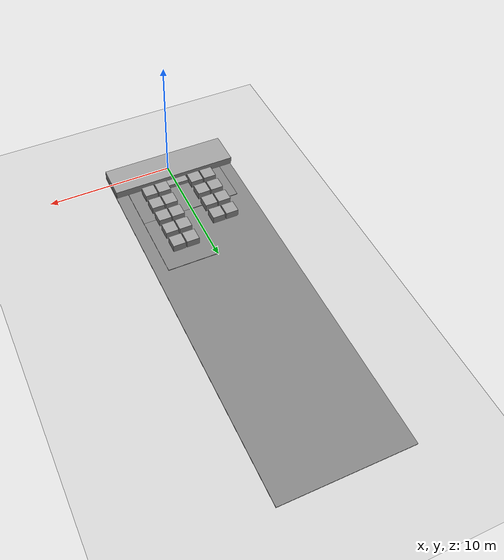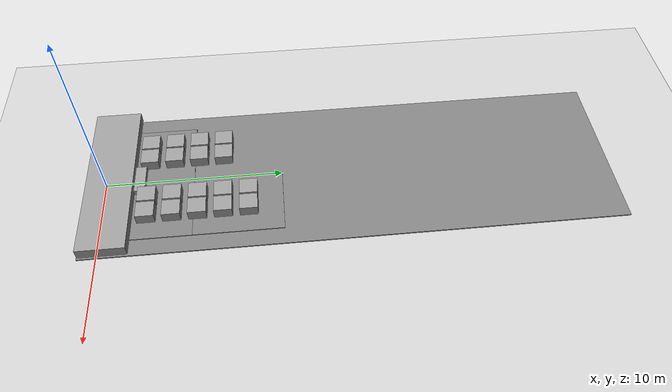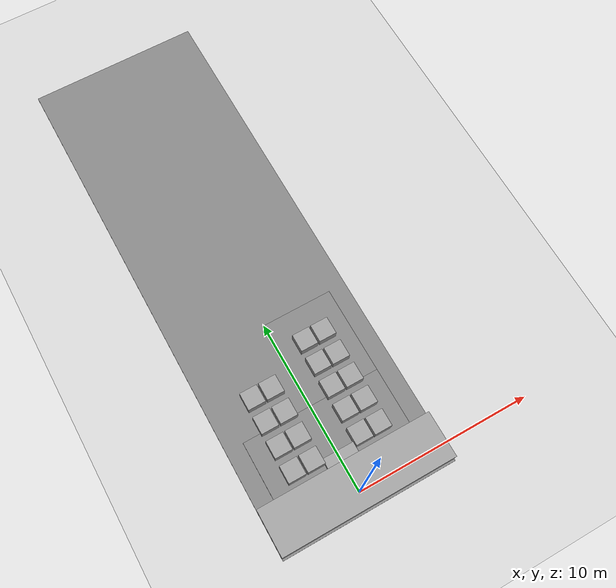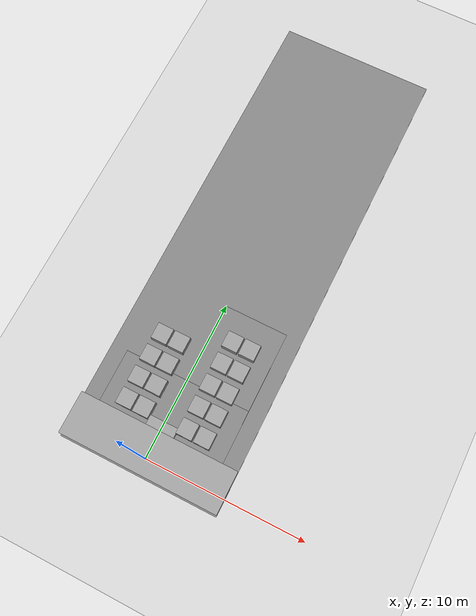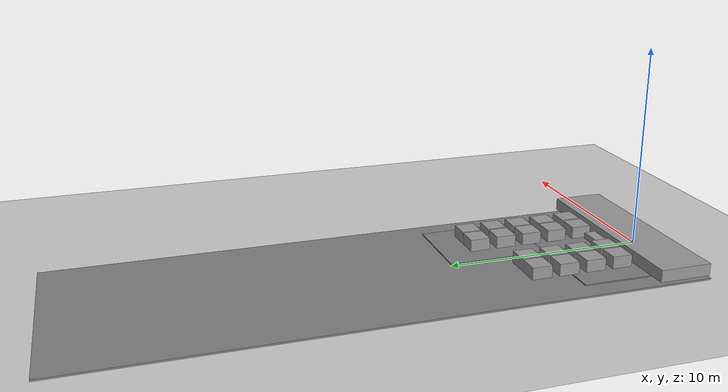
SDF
<sdf version="1.6">
 <world name="default">
  <model name="ground_plane">
   <static>1</static>
   <link name="link">
    <collision name="collision">
     <geometry><plane><normal>0 0 1</normal><size>100 100</size></plane></geometry>
     <surface>
      <contact><collide_bitmask>65535</collide_bitmask></contact>
      <friction><ode><mu>100</mu><mu2>50</mu2></ode></friction>
     </surface>
    </collision>
    <visual name="visual">
     <cast_shadows>0</cast_shadows>
     <geometry><plane><normal>0 0 1</normal><size>100 100</size></plane></geometry>
     <material>
      <script><uri>file://media/materials/scripts/gazebo.material</uri><name>Gazebo/Grey</name></script>
     </material>
    </visual>
   </link>
  </model>
  <model name="Estufa-objetos">
   <link name="link">
    <inertial>
     <mass>1</mass>
     <pose>0 0.13 0 0 -0 0</pose>
     <inertia><ixx>1</ixx><ixy>0</ixy><ixz>0</ixz><iyy>1</iyy><iyz>0</iyz><izz>1</izz></inertia>
    </inertial>
    <visual name="visual_1">
     <pose>0 9 0 0 -0 0</pose>
     <cast_shadows>0</cast_shadows>
     <geometry><box><size>10 30 0.1</size></box></geometry>
     <material>
      <script>
       <uri>model://mud_box/materials/scripts</uri>
       <uri>model://mud_box/materials/textures</uri>
       <name>vrc/mud</name>
      </script>
      <shader type="vertex"><normal_map>__default__</normal_map></shader>
      <ambient>0.5 0.5 0.5 1</ambient>
      <diffuse>0.5 0.5 0.5 1</diffuse>
      <specular>0.2 0.2 0.2 1</specular>
      <emissive>0 0 0 1</emissive>
     </material>
    </visual>
    <visual name="visual_2">
     <pose>2 2.5 0 0 -0 0</pose>
     <cast_shadows>0</cast_shadows>
     <geometry><box><size>4 5 0.2</size></box></geometry>
     <material>
      <script>
       <uri>model://mud_box/materials/scripts</uri>
       <uri>model://mud_box/materials/textures</uri>
       <name>vrc/mud</name>
      </script>
      <shader type="vertex"><normal_map>__default__</normal_map></shader>
      <ambient>0.5 0.5 0.5 1</ambient>
      <diffuse>0.5 0.5 0.5 1</diffuse>
      <specular>0.2 0.2 0.2 1</specular>
      <emissive>0 0 0 1</emissive>
     </material>
    </visual>
    <visual name="visual_3">
     <pose>2 -2.5 0 0 -0 0</pose>
     <cast_shadows>0</cast_shadows>
     <geometry><box><size>4 5 0.2</size></box></geometry>
     <material>
      <script>
       <uri>model://mud_box/materials/scripts</uri>
       <uri>model://mud_box/materials/textures</uri>
       <name>vrc/mud</name>
      </script>
      <shader type="vertex"><normal_map>__default__</normal_map></shader>
      <ambient>0.5 0.5 0.5 1</ambient>
      <diffuse>0.5 0.5 0.5 1</diffuse>
      <specular>0.2 0.2 0.2 1</specular>
      <emissive>0 0 0 1</emissive>
     </material>
    </visual>
    <visual name="visual_4">
     <pose>-2 -2.5 0 0 -0 0</pose>
     <cast_shadows>0</cast_shadows>
     <geometry><box><size>4 5 0.2</size></box></geometry>
     <material>
      <script>
       <uri>model://mud_box/materials/scripts</uri>
       <uri>model://mud_box/materials/textures</uri>
       <name>vrc/mud</name>
      </script>
      <shader type="vertex"><normal_map>__default__</normal_map></shader>
      <ambient>0.5 0.5 0.5 1</ambient>
      <diffuse>0.5 0.5 0.5 1</diffuse>
      <specular>0.2 0.2 0.2 1</specular>
      <emissive>0 0 0 1</emissive>
     </material>
    </visual>
    <collision name="collision">
     <pose>0 9 0 0 -0 0</pose>
     <geometry><box><size>10 30 0.1</size></box></geometry>
     <surface>
      <friction>
       <ode><mu>1</mu><mu2>1</mu2><fdir1>0 0 0</fdir1><slip1>0</slip1><slip2>0</slip2></ode>
       <torsional>
        <coefficient>1</coefficient>
        <patch_radius>0</patch_radius>
        <surface_radius>0</surface_radius>
        <use_patch_radius>1</use_patch_radius>
        <ode><slip>0</slip></ode>
       </torsional>
      </friction>
      <bounce><restitution_coefficient>0</restitution_coefficient><threshold>1e+06</threshold></bounce>
      <contact>
       <collide_without_contact>0</collide_without_contact>
       <collide_without_contact_bitmask>1</collide_without_contact_bitmask>
       <collide_bitmask>1</collide_bitmask>
       <ode>
        <soft_cfm>0</soft_cfm>
        <soft_erp>0.2</soft_erp>
        <kp>1e+13</kp>
        <kd>1</kd>
        <max_vel>0.01</max_vel>
        <min_depth>0</min_depth>
       </ode>
       <bullet>
        <split_impulse>1</split_impulse>
        <split_impulse_penetration_threshold>-0.01</split_impulse_penetration_threshold>
        <soft_cfm>0</soft_cfm>
        <soft_erp>0.2</soft_erp>
        <kp>1e+13</kp>
        <kd>1</kd>
       </bullet>
      </contact>
     </surface>
    </collision>
   </link>
   <link name="link_0_clone">
    <inertial>
     <mass>1</mass>
     <inertia>
      <ixx>0.166667</ixx>
      <ixy>0</ixy>
      <ixz>0</ixz>
      <iyy>0.166667</iyy>
      <iyz>0</iyz>
      <izz>0.166667</izz>
     </inertia>
    </inertial>
    <pose>2.5 -2.5 0.5 0 -0 0</pose>
    <visual name="visual">
     <geometry><box><size>1 1 0.6</size></box></geometry>
     <material>
      <lighting>1</lighting>
      <script><uri>file://media/materials/scripts/gazebo.material</uri><name>Gazebo/Grey</name></script>
      <shader type="vertex"><normal_map>__default__</normal_map></shader>
      <ambient>0.3 0.3 0.3 1</ambient>
      <diffuse>0.7 0.7 0.7 1</diffuse>
      <specular>0.01 0.01 0.01 1</specular>
      <emissive>0 0 0 1</emissive>
     </material>
    </visual>
    <collision name="collision">
     <geometry><box><size>1 1 0.6</size></box></geometry>
     <surface>
      <friction>
       <ode><mu>1</mu><mu2>1</mu2><fdir1>0 0 0</fdir1><slip1>0</slip1><slip2>0</slip2></ode>
       <torsional>
        <coefficient>1</coefficient>
        <patch_radius>0</patch_radius>
        <surface_radius>0</surface_radius>
        <use_patch_radius>1</use_patch_radius>
        <ode><slip>0</slip></ode>
       </torsional>
      </friction>
      <bounce><restitution_coefficient>0</restitution_coefficient><threshold>1e+06</threshold></bounce>
      <contact>
       <collide_without_contact>0</collide_without_contact>
       <collide_without_contact_bitmask>1</collide_without_contact_bitmask>
       <collide_bitmask>1</collide_bitmask>
       <ode>
        <soft_cfm>0</soft_cfm>
        <soft_erp>0.2</soft_erp>
        <kp>1e+13</kp>
        <kd>1</kd>
        <max_vel>0.01</max_vel>
        <min_depth>0</min_depth>
       </ode>
       <bullet>
        <split_impulse>1</split_impulse>
        <split_impulse_penetration_threshold>-0.01</split_impulse_penetration_threshold>
        <soft_cfm>0</soft_cfm>
        <soft_erp>0.2</soft_erp>
        <kp>1e+13</kp>
        <kd>1</kd>
       </bullet>
      </contact>
     </surface>
    </collision>
   </link>
   <link name="link_0_clone_0">
    <inertial>
     <mass>1</mass>
     <inertia>
      <ixx>0.166667</ixx>
      <ixy>0</ixy>
      <ixz>0</ixz>
      <iyy>0.166667</iyy>
      <iyz>0</iyz>
      <izz>0.166667</izz>
     </inertia>
    </inertial>
    <pose>-1.4 -2.5 0.5 0 -0 0</pose>
    <visual name="visual">
     <geometry><box><size>1 1 0.6</size></box></geometry>
     <material>
      <lighting>1</lighting>
      <script><uri>file://media/materials/scripts/gazebo.material</uri><name>Gazebo/Grey</name></script>
      <shader type="vertex"><normal_map>__default__</normal_map></shader>
      <ambient>0.3 0.3 0.3 1</ambient>
      <diffuse>0.7 0.7 0.7 1</diffuse>
      <specular>0.01 0.01 0.01 1</specular>
      <emissive>0 0 0 1</emissive>
     </material>
    </visual>
    <collision name="collision">
     <geometry><box><size>1 1 0.6</size></box></geometry>
     <surface>
      <friction>
       <ode><mu>1</mu><mu2>1</mu2><fdir1>0 0 0</fdir1><slip1>0</slip1><slip2>0</slip2></ode>
       <torsional>
        <coefficient>1</coefficient>
        <patch_radius>0</patch_radius>
        <surface_radius>0</surface_radius>
        <use_patch_radius>1</use_patch_radius>
        <ode><slip>0</slip></ode>
       </torsional>
      </friction>
      <bounce><restitution_coefficient>0</restitution_coefficient><threshold>1e+06</threshold></bounce>
      <contact>
       <collide_without_contact>0</collide_without_contact>
       <collide_without_contact_bitmask>1</collide_without_contact_bitmask>
       <collide_bitmask>1</collide_bitmask>
       <ode>
        <soft_cfm>0</soft_cfm>
        <soft_erp>0.2</soft_erp>
        <kp>1e+13</kp>
        <kd>1</kd>
        <max_vel>0.01</max_vel>
        <min_depth>0</min_depth>
       </ode>
       <bullet>
        <split_impulse>1</split_impulse>
        <split_impulse_penetration_threshold>-0.01</split_impulse_penetration_threshold>
        <soft_cfm>0</soft_cfm>
        <soft_erp>0.2</soft_erp>
        <kp>1e+13</kp>
        <kd>1</kd>
       </bullet>
      </contact>
     </surface>
    </collision>
   </link>
   <link name="link_0_clone_0_clone">
    <inertial>
     <mass>1</mass>
     <inertia>
      <ixx>0.166667</ixx>
      <ixy>0</ixy>
      <ixz>0</ixz>
      <iyy>0.166667</iyy>
      <iyz>0</iyz>
      <izz>0.166667</izz>
     </inertia>
    </inertial>
    <pose>0 -3 0.3 0 -0 0</pose>
    <visual name="visual">
     <geometry><box><size>1.8 0.6 0.3</size></box></geometry>
     <material>
      <lighting>1</lighting>
      <script><uri>file://media/materials/scripts/gazebo.material</uri><name>Gazebo/Grey</name></script>
      <shader type="vertex"><normal_map>__default__</normal_map></shader>
      <ambient>0.3 0.3 0.3 1</ambient>
      <diffuse>0.7 0.7 0.7 1</diffuse>
      <specular>0.01 0.01 0.01 1</specular>
      <emissive>0 0 0 1</emissive>
     </material>
    </visual>
    <collision name="collision">
     <geometry><box><size>1.8 0.6 0.3</size></box></geometry>
     <surface>
      <friction>
       <ode><mu>1</mu><mu2>1</mu2><fdir1>0 0 0</fdir1><slip1>0</slip1><slip2>0</slip2></ode>
       <torsional>
        <coefficient>1</coefficient>
        <patch_radius>0</patch_radius>
        <surface_radius>0</surface_radius>
        <use_patch_radius>1</use_patch_radius>
        <ode><slip>0</slip></ode>
       </torsional>
      </friction>
      <bounce><restitution_coefficient>0</restitution_coefficient><threshold>1e+06</threshold></bounce>
      <contact>
       <collide_without_contact>0</collide_without_contact>
       <collide_without_contact_bitmask>1</collide_without_contact_bitmask>
       <collide_bitmask>1</collide_bitmask>
       <ode>
        <soft_cfm>0</soft_cfm>
        <soft_erp>0.2</soft_erp>
        <kp>1e+13</kp>
        <kd>1</kd>
        <max_vel>0.01</max_vel>
        <min_depth>0</min_depth>
       </ode>
       <bullet>
        <split_impulse>1</split_impulse>
        <split_impulse_penetration_threshold>-0.01</split_impulse_penetration_threshold>
        <soft_cfm>0</soft_cfm>
        <soft_erp>0.2</soft_erp>
        <kp>1e+13</kp>
        <kd>1</kd>
       </bullet>
      </contact>
     </surface>
    </collision>
   </link>
   <link name="link_0_clone_1">
    <inertial>
     <mass>1</mass>
     <inertia>
      <ixx>0.166667</ixx>
      <ixy>0</ixy>
      <ixz>0</ixz>
      <iyy>0.166667</iyy>
      <iyz>0</iyz>
      <izz>0.166667</izz>
     </inertia>
    </inertial>
    <pose>-2.5 -2.5 0.5 0 -0 0</pose>
    <visual name="visual">
     <geometry><box><size>1 1 0.6</size></box></geometry>
     <material>
      <lighting>1</lighting>
      <script><uri>file://media/materials/scripts/gazebo.material</uri><name>Gazebo/Grey</name></script>
      <shader type="vertex"><normal_map>__default__</normal_map></shader>
      <ambient>0.3 0.3 0.3 1</ambient>
      <diffuse>0.7 0.7 0.7 1</diffuse>
      <specular>0.01 0.01 0.01 1</specular>
      <emissive>0 0 0 1</emissive>
     </material>
    </visual>
    <collision name="collision">
     <geometry><box><size>1 1 0.6</size></box></geometry>
     <surface>
      <friction>
       <ode><mu>1</mu><mu2>1</mu2><fdir1>0 0 0</fdir1><slip1>0</slip1><slip2>0</slip2></ode>
       <torsional>
        <coefficient>1</coefficient>
        <patch_radius>0</patch_radius>
        <surface_radius>0</surface_radius>
        <use_patch_radius>1</use_patch_radius>
        <ode><slip>0</slip></ode>
       </torsional>
      </friction>
      <bounce><restitution_coefficient>0</restitution_coefficient><threshold>1e+06</threshold></bounce>
      <contact>
       <collide_without_contact>0</collide_without_contact>
       <collide_without_contact_bitmask>1</collide_without_contact_bitmask>
       <collide_bitmask>1</collide_bitmask>
       <ode>
        <soft_cfm>0</soft_cfm>
        <soft_erp>0.2</soft_erp>
        <kp>1e+13</kp>
        <kd>1</kd>
        <max_vel>0.01</max_vel>
        <min_depth>0</min_depth>
       </ode>
       <bullet>
        <split_impulse>1</split_impulse>
        <split_impulse_penetration_threshold>-0.01</split_impulse_penetration_threshold>
        <soft_cfm>0</soft_cfm>
        <soft_erp>0.2</soft_erp>
        <kp>1e+13</kp>
        <kd>1</kd>
       </bullet>
      </contact>
     </surface>
    </collision>
   </link>
   <link name="link_0_clone_clone">
    <inertial>
     <mass>1</mass>
     <inertia>
      <ixx>0.166667</ixx>
      <ixy>0</ixy>
      <ixz>0</ixz>
      <iyy>0.166667</iyy>
      <iyz>0</iyz>
      <izz>0.166667</izz>
     </inertia>
    </inertial>
    <pose>2.5 -1.1 0.5 0 -0 0</pose>
    <visual name="visual">
     <geometry><box><size>1 1 0.6</size></box></geometry>
     <material>
      <lighting>1</lighting>
      <script><uri>file://media/materials/scripts/gazebo.material</uri><name>Gazebo/Grey</name></script>
      <shader type="vertex"><normal_map>__default__</normal_map></shader>
      <ambient>0.3 0.3 0.3 1</ambient>
      <diffuse>0.7 0.7 0.7 1</diffuse>
      <specular>0.01 0.01 0.01 1</specular>
      <emissive>0 0 0 1</emissive>
     </material>
    </visual>
    <collision name="collision">
     <geometry><box><size>1 1 0.6</size></box></geometry>
     <surface>
      <friction>
       <ode><mu>1</mu><mu2>1</mu2><fdir1>0 0 0</fdir1><slip1>0</slip1><slip2>0</slip2></ode>
       <torsional>
        <coefficient>1</coefficient>
        <patch_radius>0</patch_radius>
        <surface_radius>0</surface_radius>
        <use_patch_radius>1</use_patch_radius>
        <ode><slip>0</slip></ode>
       </torsional>
      </friction>
      <bounce><restitution_coefficient>0</restitution_coefficient><threshold>1e+06</threshold></bounce>
      <contact>
       <collide_without_contact>0</collide_without_contact>
       <collide_without_contact_bitmask>1</collide_without_contact_bitmask>
       <collide_bitmask>1</collide_bitmask>
       <ode>
        <soft_cfm>0</soft_cfm>
        <soft_erp>0.2</soft_erp>
        <kp>1e+13</kp>
        <kd>1</kd>
        <max_vel>0.01</max_vel>
        <min_depth>0</min_depth>
       </ode>
       <bullet>
        <split_impulse>1</split_impulse>
        <split_impulse_penetration_threshold>-0.01</split_impulse_penetration_threshold>
        <soft_cfm>0</soft_cfm>
        <soft_erp>0.2</soft_erp>
        <kp>1e+13</kp>
        <kd>1</kd>
       </bullet>
      </contact>
     </surface>
    </collision>
   </link>
   <link name="link_0_clone_clone_0">
    <inertial>
     <mass>1</mass>
     <inertia>
      <ixx>0.166667</ixx>
      <ixy>0</ixy>
      <ixz>0</ixz>
      <iyy>0.166667</iyy>
      <iyz>0</iyz>
      <izz>0.166667</izz>
     </inertia>
    </inertial>
    <pose>1.4 -1.1 0.5 0 -0 0</pose>
    <visual name="visual">
     <geometry><box><size>1 1 0.6</size></box></geometry>
     <material>
      <lighting>1</lighting>
      <script><uri>file://media/materials/scripts/gazebo.material</uri><name>Gazebo/Grey</name></script>
      <shader type="vertex"><normal_map>__default__</normal_map></shader>
      <ambient>0.3 0.3 0.3 1</ambient>
      <diffuse>0.7 0.7 0.7 1</diffuse>
      <specular>0.01 0.01 0.01 1</specular>
      <emissive>0 0 0 1</emissive>
     </material>
    </visual>
    <collision name="collision">
     <geometry><box><size>1 1 0.6</size></box></geometry>
     <surface>
      <friction>
       <ode><mu>1</mu><mu2>1</mu2><fdir1>0 0 0</fdir1><slip1>0</slip1><slip2>0</slip2></ode>
       <torsional>
        <coefficient>1</coefficient>
        <patch_radius>0</patch_radius>
        <surface_radius>0</surface_radius>
        <use_patch_radius>1</use_patch_radius>
        <ode><slip>0</slip></ode>
       </torsional>
      </friction>
      <bounce><restitution_coefficient>0</restitution_coefficient><threshold>1e+06</threshold></bounce>
      <contact>
       <collide_without_contact>0</collide_without_contact>
       <collide_without_contact_bitmask>1</collide_without_contact_bitmask>
       <collide_bitmask>1</collide_bitmask>
       <ode>
        <soft_cfm>0</soft_cfm>
        <soft_erp>0.2</soft_erp>
        <kp>1e+13</kp>
        <kd>1</kd>
        <max_vel>0.01</max_vel>
        <min_depth>0</min_depth>
       </ode>
       <bullet>
        <split_impulse>1</split_impulse>
        <split_impulse_penetration_threshold>-0.01</split_impulse_penetration_threshold>
        <soft_cfm>0</soft_cfm>
        <soft_erp>0.2</soft_erp>
        <kp>1e+13</kp>
        <kd>1</kd>
       </bullet>
      </contact>
     </surface>
    </collision>
   </link>
   <link name="link_0_clone_clone_1">
    <inertial>
     <mass>1</mass>
     <inertia>
      <ixx>0.166667</ixx>
      <ixy>0</ixy>
      <ixz>0</ixz>
      <iyy>0.166667</iyy>
      <iyz>0</iyz>
      <izz>0.166667</izz>
     </inertia>
    </inertial>
    <pose>-1.4 -1.1 0.5 0 -0 0</pose>
    <visual name="visual">
     <geometry><box><size>1 1 0.6</size></box></geometry>
     <material>
      <lighting>1</lighting>
      <script><uri>file://media/materials/scripts/gazebo.material</uri><name>Gazebo/Grey</name></script>
      <shader type="vertex"><normal_map>__default__</normal_map></shader>
      <ambient>0.3 0.3 0.3 1</ambient>
      <diffuse>0.7 0.7 0.7 1</diffuse>
      <specular>0.01 0.01 0.01 1</specular>
      <emissive>0 0 0 1</emissive>
     </material>
    </visual>
    <collision name="collision">
     <geometry><box><size>1 1 0.6</size></box></geometry>
     <surface>
      <friction>
       <ode><mu>1</mu><mu2>1</mu2><fdir1>0 0 0</fdir1><slip1>0</slip1><slip2>0</slip2></ode>
       <torsional>
        <coefficient>1</coefficient>
        <patch_radius>0</patch_radius>
        <surface_radius>0</surface_radius>
        <use_patch_radius>1</use_patch_radius>
        <ode><slip>0</slip></ode>
       </torsional>
      </friction>
      <bounce><restitution_coefficient>0</restitution_coefficient><threshold>1e+06</threshold></bounce>
      <contact>
       <collide_without_contact>0</collide_without_contact>
       <collide_without_contact_bitmask>1</collide_without_contact_bitmask>
       <collide_bitmask>1</collide_bitmask>
       <ode>
        <soft_cfm>0</soft_cfm>
        <soft_erp>0.2</soft_erp>
        <kp>1e+13</kp>
        <kd>1</kd>
        <max_vel>0.01</max_vel>
        <min_depth>0</min_depth>
       </ode>
       <bullet>
        <split_impulse>1</split_impulse>
        <split_impulse_penetration_threshold>-0.01</split_impulse_penetration_threshold>
        <soft_cfm>0</soft_cfm>
        <soft_erp>0.2</soft_erp>
        <kp>1e+13</kp>
        <kd>1</kd>
       </bullet>
      </contact>
     </surface>
    </collision>
   </link>
   <link name="link_0_clone_clone_10">
    <inertial>
     <mass>1</mass>
     <inertia>
      <ixx>0.166667</ixx>
      <ixy>0</ixy>
      <ixz>0</ixz>
      <iyy>0.166667</iyy>
      <iyz>0</iyz>
      <izz>0.166667</izz>
     </inertia>
    </inertial>
    <pose>-1.4 1.7 0.5 0 -0 0</pose>
    <visual name="visual">
     <geometry><box><size>1 1 0.6</size></box></geometry>
     <material>
      <lighting>1</lighting>
      <script><uri>file://media/materials/scripts/gazebo.material</uri><name>Gazebo/Grey</name></script>
      <shader type="vertex"><normal_map>__default__</normal_map></shader>
      <ambient>0.3 0.3 0.3 1</ambient>
      <diffuse>0.7 0.7 0.7 1</diffuse>
      <specular>0.01 0.01 0.01 1</specular>
      <emissive>0 0 0 1</emissive>
     </material>
    </visual>
    <collision name="collision">
     <geometry><box><size>1 1 0.6</size></box></geometry>
     <surface>
      <friction>
       <ode><mu>1</mu><mu2>1</mu2><fdir1>0 0 0</fdir1><slip1>0</slip1><slip2>0</slip2></ode>
       <torsional>
        <coefficient>1</coefficient>
        <patch_radius>0</patch_radius>
        <surface_radius>0</surface_radius>
        <use_patch_radius>1</use_patch_radius>
        <ode><slip>0</slip></ode>
       </torsional>
      </friction>
      <bounce><restitution_coefficient>0</restitution_coefficient><threshold>1e+06</threshold></bounce>
      <contact>
       <collide_without_contact>0</collide_without_contact>
       <collide_without_contact_bitmask>1</collide_without_contact_bitmask>
       <collide_bitmask>1</collide_bitmask>
       <ode>
        <soft_cfm>0</soft_cfm>
        <soft_erp>0.2</soft_erp>
        <kp>1e+13</kp>
        <kd>1</kd>
        <max_vel>0.01</max_vel>
        <min_depth>0</min_depth>
       </ode>
       <bullet>
        <split_impulse>1</split_impulse>
        <split_impulse_penetration_threshold>-0.01</split_impulse_penetration_threshold>
        <soft_cfm>0</soft_cfm>
        <soft_erp>0.2</soft_erp>
        <kp>1e+13</kp>
        <kd>1</kd>
       </bullet>
      </contact>
     </surface>
    </collision>
   </link>
   <link name="link_0_clone_clone_11">
    <inertial>
     <mass>1</mass>
     <inertia>
      <ixx>0.166667</ixx>
      <ixy>0</ixy>
      <ixz>0</ixz>
      <iyy>0.166667</iyy>
      <iyz>0</iyz>
      <izz>0.166667</izz>
     </inertia>
    </inertial>
    <pose>-2.5 1.7 0.5 0 -0 0</pose>
    <visual name="visual">
     <geometry><box><size>1 1 0.6</size></box></geometry>
     <material>
      <lighting>1</lighting>
      <script><uri>file://media/materials/scripts/gazebo.material</uri><name>Gazebo/Grey</name></script>
      <shader type="vertex"><normal_map>__default__</normal_map></shader>
      <ambient>0.3 0.3 0.3 1</ambient>
      <diffuse>0.7 0.7 0.7 1</diffuse>
      <specular>0.01 0.01 0.01 1</specular>
      <emissive>0 0 0 1</emissive>
     </material>
    </visual>
    <collision name="collision">
     <geometry><box><size>1 1 0.6</size></box></geometry>
     <surface>
      <friction>
       <ode><mu>1</mu><mu2>1</mu2><fdir1>0 0 0</fdir1><slip1>0</slip1><slip2>0</slip2></ode>
       <torsional>
        <coefficient>1</coefficient>
        <patch_radius>0</patch_radius>
        <surface_radius>0</surface_radius>
        <use_patch_radius>1</use_patch_radius>
        <ode><slip>0</slip></ode>
       </torsional>
      </friction>
      <bounce><restitution_coefficient>0</restitution_coefficient><threshold>1e+06</threshold></bounce>
      <contact>
       <collide_without_contact>0</collide_without_contact>
       <collide_without_contact_bitmask>1</collide_without_contact_bitmask>
       <collide_bitmask>1</collide_bitmask>
       <ode>
        <soft_cfm>0</soft_cfm>
        <soft_erp>0.2</soft_erp>
        <kp>1e+13</kp>
        <kd>1</kd>
        <max_vel>0.01</max_vel>
        <min_depth>0</min_depth>
       </ode>
       <bullet>
        <split_impulse>1</split_impulse>
        <split_impulse_penetration_threshold>-0.01</split_impulse_penetration_threshold>
        <soft_cfm>0</soft_cfm>
        <soft_erp>0.2</soft_erp>
        <kp>1e+13</kp>
        <kd>1</kd>
       </bullet>
      </contact>
     </surface>
    </collision>
   </link>
   <link name="link_0_clone_clone_12">
    <inertial>
     <mass>1</mass>
     <inertia>
      <ixx>0.166667</ixx>
      <ixy>0</ixy>
      <ixz>0</ixz>
      <iyy>0.166667</iyy>
      <iyz>0</iyz>
      <izz>0.166667</izz>
     </inertia>
    </inertial>
    <pose>2.5 3.1 0.5 0 -0 0</pose>
    <visual name="visual">
     <geometry><box><size>1 1 0.6</size></box></geometry>
     <material>
      <lighting>1</lighting>
      <script><uri>file://media/materials/scripts/gazebo.material</uri><name>Gazebo/Grey</name></script>
      <shader type="vertex"><normal_map>__default__</normal_map></shader>
      <ambient>0.3 0.3 0.3 1</ambient>
      <diffuse>0.7 0.7 0.7 1</diffuse>
      <specular>0.01 0.01 0.01 1</specular>
      <emissive>0 0 0 1</emissive>
     </material>
    </visual>
    <collision name="collision">
     <geometry><box><size>1 1 0.6</size></box></geometry>
     <surface>
      <friction>
       <ode><mu>1</mu><mu2>1</mu2><fdir1>0 0 0</fdir1><slip1>0</slip1><slip2>0</slip2></ode>
       <torsional>
        <coefficient>1</coefficient>
        <patch_radius>0</patch_radius>
        <surface_radius>0</surface_radius>
        <use_patch_radius>1</use_patch_radius>
        <ode><slip>0</slip></ode>
       </torsional>
      </friction>
      <bounce><restitution_coefficient>0</restitution_coefficient><threshold>1e+06</threshold></bounce>
      <contact>
       <collide_without_contact>0</collide_without_contact>
       <collide_without_contact_bitmask>1</collide_without_contact_bitmask>
       <collide_bitmask>1</collide_bitmask>
       <ode>
        <soft_cfm>0</soft_cfm>
        <soft_erp>0.2</soft_erp>
        <kp>1e+13</kp>
        <kd>1</kd>
        <max_vel>0.01</max_vel>
        <min_depth>0</min_depth>
       </ode>
       <bullet>
        <split_impulse>1</split_impulse>
        <split_impulse_penetration_threshold>-0.01</split_impulse_penetration_threshold>
        <soft_cfm>0</soft_cfm>
        <soft_erp>0.2</soft_erp>
        <kp>1e+13</kp>
        <kd>1</kd>
       </bullet>
      </contact>
     </surface>
    </collision>
   </link>
   <link name="link_0_clone_clone_13">
    <inertial>
     <mass>1</mass>
     <inertia>
      <ixx>0.166667</ixx>
      <ixy>0</ixy>
      <ixz>0</ixz>
      <iyy>0.166667</iyy>
      <iyz>0</iyz>
      <izz>0.166667</izz>
     </inertia>
    </inertial>
    <pose>1.4 3.1 0.5 0 -0 0</pose>
    <visual name="visual">
     <geometry><box><size>1 1 0.6</size></box></geometry>
     <material>
      <lighting>1</lighting>
      <script><uri>file://media/materials/scripts/gazebo.material</uri><name>Gazebo/Grey</name></script>
      <shader type="vertex"><normal_map>__default__</normal_map></shader>
      <ambient>0.3 0.3 0.3 1</ambient>
      <diffuse>0.7 0.7 0.7 1</diffuse>
      <specular>0.01 0.01 0.01 1</specular>
      <emissive>0 0 0 1</emissive>
     </material>
    </visual>
    <collision name="collision">
     <geometry><box><size>1 1 0.6</size></box></geometry>
     <surface>
      <friction>
       <ode><mu>1</mu><mu2>1</mu2><fdir1>0 0 0</fdir1><slip1>0</slip1><slip2>0</slip2></ode>
       <torsional>
        <coefficient>1</coefficient>
        <patch_radius>0</patch_radius>
        <surface_radius>0</surface_radius>
        <use_patch_radius>1</use_patch_radius>
        <ode><slip>0</slip></ode>
       </torsional>
      </friction>
      <bounce><restitution_coefficient>0</restitution_coefficient><threshold>1e+06</threshold></bounce>
      <contact>
       <collide_without_contact>0</collide_without_contact>
       <collide_without_contact_bitmask>1</collide_without_contact_bitmask>
       <collide_bitmask>1</collide_bitmask>
       <ode>
        <soft_cfm>0</soft_cfm>
        <soft_erp>0.2</soft_erp>
        <kp>1e+13</kp>
        <kd>1</kd>
        <max_vel>0.01</max_vel>
        <min_depth>0</min_depth>
       </ode>
       <bullet>
        <split_impulse>1</split_impulse>
        <split_impulse_penetration_threshold>-0.01</split_impulse_penetration_threshold>
        <soft_cfm>0</soft_cfm>
        <soft_erp>0.2</soft_erp>
        <kp>1e+13</kp>
        <kd>1</kd>
       </bullet>
      </contact>
     </surface>
    </collision>
   </link>
   <link name="link_0_clone_clone_2">
    <inertial>
     <mass>1</mass>
     <inertia>
      <ixx>0.166667</ixx>
      <ixy>0</ixy>
      <ixz>0</ixz>
      <iyy>0.166667</iyy>
      <iyz>0</iyz>
      <izz>0.166667</izz>
     </inertia>
    </inertial>
    <pose>1.4 -2.5 0.5 0 -0 0</pose>
    <visual name="visual">
     <geometry><box><size>1 1 0.6</size></box></geometry>
     <material>
      <lighting>1</lighting>
      <script><uri>file://media/materials/scripts/gazebo.material</uri><name>Gazebo/Grey</name></script>
      <shader type="vertex"><normal_map>__default__</normal_map></shader>
      <ambient>0.3 0.3 0.3 1</ambient>
      <diffuse>0.7 0.7 0.7 1</diffuse>
      <specular>0.01 0.01 0.01 1</specular>
      <emissive>0 0 0 1</emissive>
     </material>
    </visual>
    <collision name="collision">
     <geometry><box><size>1 1 0.6</size></box></geometry>
     <surface>
      <friction>
       <ode><mu>1</mu><mu2>1</mu2><fdir1>0 0 0</fdir1><slip1>0</slip1><slip2>0</slip2></ode>
       <torsional>
        <coefficient>1</coefficient>
        <patch_radius>0</patch_radius>
        <surface_radius>0</surface_radius>
        <use_patch_radius>1</use_patch_radius>
        <ode><slip>0</slip></ode>
       </torsional>
      </friction>
      <bounce><restitution_coefficient>0</restitution_coefficient><threshold>1e+06</threshold></bounce>
      <contact>
       <collide_without_contact>0</collide_without_contact>
       <collide_without_contact_bitmask>1</collide_without_contact_bitmask>
       <collide_bitmask>1</collide_bitmask>
       <ode>
        <soft_cfm>0</soft_cfm>
        <soft_erp>0.2</soft_erp>
        <kp>1e+13</kp>
        <kd>1</kd>
        <max_vel>0.01</max_vel>
        <min_depth>0</min_depth>
       </ode>
       <bullet>
        <split_impulse>1</split_impulse>
        <split_impulse_penetration_threshold>-0.01</split_impulse_penetration_threshold>
        <soft_cfm>0</soft_cfm>
        <soft_erp>0.2</soft_erp>
        <kp>1e+13</kp>
        <kd>1</kd>
       </bullet>
      </contact>
     </surface>
    </collision>
   </link>
   <link name="link_0_clone_clone_3">
    <inertial>
     <mass>1</mass>
     <inertia>
      <ixx>0.166667</ixx>
      <ixy>0</ixy>
      <ixz>0</ixz>
      <iyy>0.166667</iyy>
      <iyz>0</iyz>
      <izz>0.166667</izz>
     </inertia>
    </inertial>
    <pose>-2.5 -1.1 0.5 0 -0 0</pose>
    <visual name="visual">
     <geometry><box><size>1 1 0.6</size></box></geometry>
     <material>
      <lighting>1</lighting>
      <script><uri>file://media/materials/scripts/gazebo.material</uri><name>Gazebo/Grey</name></script>
      <shader type="vertex"><normal_map>__default__</normal_map></shader>
      <ambient>0.3 0.3 0.3 1</ambient>
      <diffuse>0.7 0.7 0.7 1</diffuse>
      <specular>0.01 0.01 0.01 1</specular>
      <emissive>0 0 0 1</emissive>
     </material>
    </visual>
    <collision name="collision">
     <geometry><box><size>1 1 0.6</size></box></geometry>
     <surface>
      <friction>
       <ode><mu>1</mu><mu2>1</mu2><fdir1>0 0 0</fdir1><slip1>0</slip1><slip2>0</slip2></ode>
       <torsional>
        <coefficient>1</coefficient>
        <patch_radius>0</patch_radius>
        <surface_radius>0</surface_radius>
        <use_patch_radius>1</use_patch_radius>
        <ode><slip>0</slip></ode>
       </torsional>
      </friction>
      <bounce><restitution_coefficient>0</restitution_coefficient><threshold>1e+06</threshold></bounce>
      <contact>
       <collide_without_contact>0</collide_without_contact>
       <collide_without_contact_bitmask>1</collide_without_contact_bitmask>
       <collide_bitmask>1</collide_bitmask>
       <ode>
        <soft_cfm>0</soft_cfm>
        <soft_erp>0.2</soft_erp>
        <kp>1e+13</kp>
        <kd>1</kd>
        <max_vel>0.01</max_vel>
        <min_depth>0</min_depth>
       </ode>
       <bullet>
        <split_impulse>1</split_impulse>
        <split_impulse_penetration_threshold>-0.01</split_impulse_penetration_threshold>
        <soft_cfm>0</soft_cfm>
        <soft_erp>0.2</soft_erp>
        <kp>1e+13</kp>
        <kd>1</kd>
       </bullet>
      </contact>
     </surface>
    </collision>
   </link>
   <link name="link_0_clone_clone_4">
    <inertial>
     <mass>1</mass>
     <inertia>
      <ixx>0.166667</ixx>
      <ixy>0</ixy>
      <ixz>0</ixz>
      <iyy>0.166667</iyy>
      <iyz>0</iyz>
      <izz>0.166667</izz>
     </inertia>
    </inertial>
    <pose>2.5 0.3 0.5 0 -0 0</pose>
    <visual name="visual">
     <geometry><box><size>1 1 0.6</size></box></geometry>
     <material>
      <lighting>1</lighting>
      <script><uri>file://media/materials/scripts/gazebo.material</uri><name>Gazebo/Grey</name></script>
      <shader type="vertex"><normal_map>__default__</normal_map></shader>
      <ambient>0.3 0.3 0.3 1</ambient>
      <diffuse>0.7 0.7 0.7 1</diffuse>
      <specular>0.01 0.01 0.01 1</specular>
      <emissive>0 0 0 1</emissive>
     </material>
    </visual>
    <collision name="collision">
     <geometry><box><size>1 1 0.6</size></box></geometry>
     <surface>
      <friction>
       <ode><mu>1</mu><mu2>1</mu2><fdir1>0 0 0</fdir1><slip1>0</slip1><slip2>0</slip2></ode>
       <torsional>
        <coefficient>1</coefficient>
        <patch_radius>0</patch_radius>
        <surface_radius>0</surface_radius>
        <use_patch_radius>1</use_patch_radius>
        <ode><slip>0</slip></ode>
       </torsional>
      </friction>
      <bounce><restitution_coefficient>0</restitution_coefficient><threshold>1e+06</threshold></bounce>
      <contact>
       <collide_without_contact>0</collide_without_contact>
       <collide_without_contact_bitmask>1</collide_without_contact_bitmask>
       <collide_bitmask>1</collide_bitmask>
       <ode>
        <soft_cfm>0</soft_cfm>
        <soft_erp>0.2</soft_erp>
        <kp>1e+13</kp>
        <kd>1</kd>
        <max_vel>0.01</max_vel>
        <min_depth>0</min_depth>
       </ode>
       <bullet>
        <split_impulse>1</split_impulse>
        <split_impulse_penetration_threshold>-0.01</split_impulse_penetration_threshold>
        <soft_cfm>0</soft_cfm>
        <soft_erp>0.2</soft_erp>
        <kp>1e+13</kp>
        <kd>1</kd>
       </bullet>
      </contact>
     </surface>
    </collision>
   </link>
   <link name="link_0_clone_clone_5">
    <inertial>
     <mass>1</mass>
     <inertia>
      <ixx>0.166667</ixx>
      <ixy>0</ixy>
      <ixz>0</ixz>
      <iyy>0.166667</iyy>
      <iyz>0</iyz>
      <izz>0.166667</izz>
     </inertia>
    </inertial>
    <pose>1.4 0.3 0.5 0 -0 0</pose>
    <visual name="visual">
     <geometry><box><size>1 1 0.6</size></box></geometry>
     <material>
      <lighting>1</lighting>
      <script><uri>file://media/materials/scripts/gazebo.material</uri><name>Gazebo/Grey</name></script>
      <shader type="vertex"><normal_map>__default__</normal_map></shader>
      <ambient>0.3 0.3 0.3 1</ambient>
      <diffuse>0.7 0.7 0.7 1</diffuse>
      <specular>0.01 0.01 0.01 1</specular>
      <emissive>0 0 0 1</emissive>
     </material>
    </visual>
    <collision name="collision">
     <geometry><box><size>1 1 0.6</size></box></geometry>
     <surface>
      <friction>
       <ode><mu>1</mu><mu2>1</mu2><fdir1>0 0 0</fdir1><slip1>0</slip1><slip2>0</slip2></ode>
       <torsional>
        <coefficient>1</coefficient>
        <patch_radius>0</patch_radius>
        <surface_radius>0</surface_radius>
        <use_patch_radius>1</use_patch_radius>
        <ode><slip>0</slip></ode>
       </torsional>
      </friction>
      <bounce><restitution_coefficient>0</restitution_coefficient><threshold>1e+06</threshold></bounce>
      <contact>
       <collide_without_contact>0</collide_without_contact>
       <collide_without_contact_bitmask>1</collide_without_contact_bitmask>
       <collide_bitmask>1</collide_bitmask>
       <ode>
        <soft_cfm>0</soft_cfm>
        <soft_erp>0.2</soft_erp>
        <kp>1e+13</kp>
        <kd>1</kd>
        <max_vel>0.01</max_vel>
        <min_depth>0</min_depth>
       </ode>
       <bullet>
        <split_impulse>1</split_impulse>
        <split_impulse_penetration_threshold>-0.01</split_impulse_penetration_threshold>
        <soft_cfm>0</soft_cfm>
        <soft_erp>0.2</soft_erp>
        <kp>1e+13</kp>
        <kd>1</kd>
       </bullet>
      </contact>
     </surface>
    </collision>
   </link>
   <link name="link_0_clone_clone_52">
    <inertial>
     <mass>1</mass>
     <inertia>
      <ixx>0.166667</ixx>
      <ixy>0</ixy>
      <ixz>0</ixz>
      <iyy>0.166667</iyy>
      <iyz>0</iyz>
      <izz>0.166667</izz>
     </inertia>
    </inertial>
    <pose>0 -4.6 0.5 0 -0 0</pose>
    <visual name="visual">
     <geometry><box><size>10 2.6 0.6</size></box></geometry>
     <material>
      <lighting>1</lighting>
      <script><uri>file://media/materials/scripts/gazebo.material</uri><name>Gazebo/Grey</name></script>
      <shader type="vertex"><normal_map>__default__</normal_map></shader>
      <ambient>0.3 0.3 0.3 1</ambient>
      <diffuse>0.7 0.7 0.7 1</diffuse>
      <specular>0.01 0.01 0.01 1</specular>
      <emissive>0 0 0 1</emissive>
     </material>
    </visual>
    <collision name="collision">
     <geometry><box><size>10 2.6 0.6</size></box></geometry>
     <surface>
      <friction>
       <ode><mu>1</mu><mu2>1</mu2><fdir1>0 0 0</fdir1><slip1>0</slip1><slip2>0</slip2></ode>
       <torsional>
        <coefficient>1</coefficient>
        <patch_radius>0</patch_radius>
        <surface_radius>0</surface_radius>
        <use_patch_radius>1</use_patch_radius>
        <ode><slip>0</slip></ode>
       </torsional>
      </friction>
      <bounce><restitution_coefficient>0</restitution_coefficient><threshold>1e+06</threshold></bounce>
      <contact>
       <collide_without_contact>0</collide_without_contact>
       <collide_without_contact_bitmask>1</collide_without_contact_bitmask>
       <collide_bitmask>1</collide_bitmask>
       <ode>
        <soft_cfm>0</soft_cfm>
        <soft_erp>0.2</soft_erp>
        <kp>1e+13</kp>
        <kd>1</kd>
        <max_vel>0.01</max_vel>
        <min_depth>0</min_depth>
       </ode>
       <bullet>
        <split_impulse>1</split_impulse>
        <split_impulse_penetration_threshold>-0.01</split_impulse_penetration_threshold>
        <soft_cfm>0</soft_cfm>
        <soft_erp>0.2</soft_erp>
        <kp>1e+13</kp>
        <kd>1</kd>
       </bullet>
      </contact>
     </surface>
    </collision>
   </link>
   <link name="link_0_clone_clone_6">
    <inertial>
     <mass>1</mass>
     <inertia>
      <ixx>0.166667</ixx>
      <ixy>0</ixy>
      <ixz>0</ixz>
      <iyy>0.166667</iyy>
      <iyz>0</iyz>
      <izz>0.166667</izz>
     </inertia>
    </inertial>
    <pose>-1.4 0.3 0.5 0 -0 0</pose>
    <visual name="visual">
     <geometry><box><size>1 1 0.6</size></box></geometry>
     <material>
      <lighting>1</lighting>
      <script><uri>file://media/materials/scripts/gazebo.material</uri><name>Gazebo/Grey</name></script>
      <shader type="vertex"><normal_map>__default__</normal_map></shader>
      <ambient>0.3 0.3 0.3 1</ambient>
      <diffuse>0.7 0.7 0.7 1</diffuse>
      <specular>0.01 0.01 0.01 1</specular>
      <emissive>0 0 0 1</emissive>
     </material>
    </visual>
    <collision name="collision">
     <geometry><box><size>1 1 0.6</size></box></geometry>
     <surface>
      <friction>
       <ode><mu>1</mu><mu2>1</mu2><fdir1>0 0 0</fdir1><slip1>0</slip1><slip2>0</slip2></ode>
       <torsional>
        <coefficient>1</coefficient>
        <patch_radius>0</patch_radius>
        <surface_radius>0</surface_radius>
        <use_patch_radius>1</use_patch_radius>
        <ode><slip>0</slip></ode>
       </torsional>
      </friction>
      <bounce><restitution_coefficient>0</restitution_coefficient><threshold>1e+06</threshold></bounce>
      <contact>
       <collide_without_contact>0</collide_without_contact>
       <collide_without_contact_bitmask>1</collide_without_contact_bitmask>
       <collide_bitmask>1</collide_bitmask>
       <ode>
        <soft_cfm>0</soft_cfm>
        <soft_erp>0.2</soft_erp>
        <kp>1e+13</kp>
        <kd>1</kd>
        <max_vel>0.01</max_vel>
        <min_depth>0</min_depth>
       </ode>
       <bullet>
        <split_impulse>1</split_impulse>
        <split_impulse_penetration_threshold>-0.01</split_impulse_penetration_threshold>
        <soft_cfm>0</soft_cfm>
        <soft_erp>0.2</soft_erp>
        <kp>1e+13</kp>
        <kd>1</kd>
       </bullet>
      </contact>
     </surface>
    </collision>
   </link>
   <link name="link_0_clone_clone_7">
    <inertial>
     <mass>1</mass>
     <inertia>
      <ixx>0.166667</ixx>
      <ixy>0</ixy>
      <ixz>0</ixz>
      <iyy>0.166667</iyy>
      <iyz>0</iyz>
      <izz>0.166667</izz>
     </inertia>
    </inertial>
    <pose>-2.5 0.3 0.5 0 -0 0</pose>
    <visual name="visual">
     <geometry><box><size>1 1 0.6</size></box></geometry>
     <material>
      <lighting>1</lighting>
      <script><uri>file://media/materials/scripts/gazebo.material</uri><name>Gazebo/Grey</name></script>
      <shader type="vertex"><normal_map>__default__</normal_map></shader>
      <ambient>0.3 0.3 0.3 1</ambient>
      <diffuse>0.7 0.7 0.7 1</diffuse>
      <specular>0.01 0.01 0.01 1</specular>
      <emissive>0 0 0 1</emissive>
     </material>
    </visual>
    <collision name="collision">
     <geometry><box><size>1 1 0.6</size></box></geometry>
     <surface>
      <friction>
       <ode><mu>1</mu><mu2>1</mu2><fdir1>0 0 0</fdir1><slip1>0</slip1><slip2>0</slip2></ode>
       <torsional>
        <coefficient>1</coefficient>
        <patch_radius>0</patch_radius>
        <surface_radius>0</surface_radius>
        <use_patch_radius>1</use_patch_radius>
        <ode><slip>0</slip></ode>
       </torsional>
      </friction>
      <bounce><restitution_coefficient>0</restitution_coefficient><threshold>1e+06</threshold></bounce>
      <contact>
       <collide_without_contact>0</collide_without_contact>
       <collide_without_contact_bitmask>1</collide_without_contact_bitmask>
       <collide_bitmask>1</collide_bitmask>
       <ode>
        <soft_cfm>0</soft_cfm>
        <soft_erp>0.2</soft_erp>
        <kp>1e+13</kp>
        <kd>1</kd>
        <max_vel>0.01</max_vel>
        <min_depth>0</min_depth>
       </ode>
       <bullet>
        <split_impulse>1</split_impulse>
        <split_impulse_penetration_threshold>-0.01</split_impulse_penetration_threshold>
        <soft_cfm>0</soft_cfm>
        <soft_erp>0.2</soft_erp>
        <kp>1e+13</kp>
        <kd>1</kd>
       </bullet>
      </contact>
     </surface>
    </collision>
   </link>
   <link name="link_0_clone_clone_8">
    <inertial>
     <mass>1</mass>
     <inertia>
      <ixx>0.166667</ixx>
      <ixy>0</ixy>
      <ixz>0</ixz>
      <iyy>0.166667</iyy>
      <iyz>0</iyz>
      <izz>0.166667</izz>
     </inertia>
    </inertial>
    <pose>2.5 1.7 0.5 0 -0 0</pose>
    <visual name="visual">
     <geometry><box><size>1 1 0.6</size></box></geometry>
     <material>
      <lighting>1</lighting>
      <script><uri>file://media/materials/scripts/gazebo.material</uri><name>Gazebo/Grey</name></script>
      <shader type="vertex"><normal_map>__default__</normal_map></shader>
      <ambient>0.3 0.3 0.3 1</ambient>
      <diffuse>0.7 0.7 0.7 1</diffuse>
      <specular>0.01 0.01 0.01 1</specular>
      <emissive>0 0 0 1</emissive>
     </material>
    </visual>
    <collision name="collision">
     <geometry><box><size>1 1 0.6</size></box></geometry>
     <surface>
      <friction>
       <ode><mu>1</mu><mu2>1</mu2><fdir1>0 0 0</fdir1><slip1>0</slip1><slip2>0</slip2></ode>
       <torsional>
        <coefficient>1</coefficient>
        <patch_radius>0</patch_radius>
        <surface_radius>0</surface_radius>
        <use_patch_radius>1</use_patch_radius>
        <ode><slip>0</slip></ode>
       </torsional>
      </friction>
      <bounce><restitution_coefficient>0</restitution_coefficient><threshold>1e+06</threshold></bounce>
      <contact>
       <collide_without_contact>0</collide_without_contact>
       <collide_without_contact_bitmask>1</collide_without_contact_bitmask>
       <collide_bitmask>1</collide_bitmask>
       <ode>
        <soft_cfm>0</soft_cfm>
        <soft_erp>0.2</soft_erp>
        <kp>1e+13</kp>
        <kd>1</kd>
        <max_vel>0.01</max_vel>
        <min_depth>0</min_depth>
       </ode>
       <bullet>
        <split_impulse>1</split_impulse>
        <split_impulse_penetration_threshold>-0.01</split_impulse_penetration_threshold>
        <soft_cfm>0</soft_cfm>
        <soft_erp>0.2</soft_erp>
        <kp>1e+13</kp>
        <kd>1</kd>
       </bullet>
      </contact>
     </surface>
    </collision>
   </link>
   <link name="link_0_clone_clone_9">
    <inertial>
     <mass>1</mass>
     <inertia>
      <ixx>0.166667</ixx>
      <ixy>0</ixy>
      <ixz>0</ixz>
      <iyy>0.166667</iyy>
      <iyz>0</iyz>
      <izz>0.166667</izz>
     </inertia>
    </inertial>
    <pose>1.4 1.7 0.5 0 -0 0</pose>
    <visual name="visual">
     <geometry><box><size>1 1 0.6</size></box></geometry>
     <material>
      <lighting>1</lighting>
      <script><uri>file://media/materials/scripts/gazebo.material</uri><name>Gazebo/Grey</name></script>
      <shader type="vertex"><normal_map>__default__</normal_map></shader>
      <ambient>0.3 0.3 0.3 1</ambient>
      <diffuse>0.7 0.7 0.7 1</diffuse>
      <specular>0.01 0.01 0.01 1</specular>
      <emissive>0 0 0 1</emissive>
     </material>
    </visual>
    <collision name="collision">
     <geometry><box><size>1 1 0.6</size></box></geometry>
     <surface>
      <friction>
       <ode><mu>1</mu><mu2>1</mu2><fdir1>0 0 0</fdir1><slip1>0</slip1><slip2>0</slip2></ode>
       <torsional>
        <coefficient>1</coefficient>
        <patch_radius>0</patch_radius>
        <surface_radius>0</surface_radius>
        <use_patch_radius>1</use_patch_radius>
        <ode><slip>0</slip></ode>
       </torsional>
      </friction>
      <bounce><restitution_coefficient>0</restitution_coefficient><threshold>1e+06</threshold></bounce>
      <contact>
       <collide_without_contact>0</collide_without_contact>
       <collide_without_contact_bitmask>1</collide_without_contact_bitmask>
       <collide_bitmask>1</collide_bitmask>
       <ode>
        <soft_cfm>0</soft_cfm>
        <soft_erp>0.2</soft_erp>
        <kp>1e+13</kp>
        <kd>1</kd>
        <max_vel>0.01</max_vel>
        <min_depth>0</min_depth>
       </ode>
       <bullet>
        <split_impulse>1</split_impulse>
        <split_impulse_penetration_threshold>-0.01</split_impulse_penetration_threshold>
        <soft_cfm>0</soft_cfm>
        <soft_erp>0.2</soft_erp>
        <kp>1e+13</kp>
        <kd>1</kd>
       </bullet>
      </contact>
     </surface>
    </collision>
   </link>
   <static>1</static>
   <pose>0.033468 4.9867 0 0 -0 0</pose>
  </model>
 </world>
</sdf>
